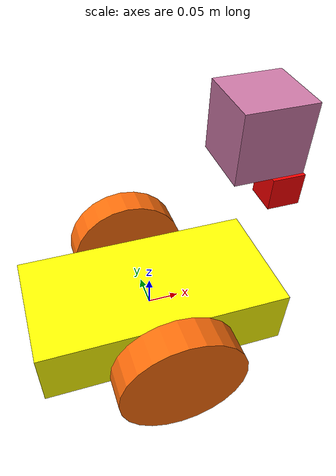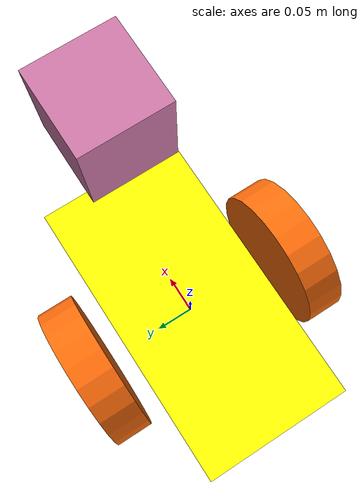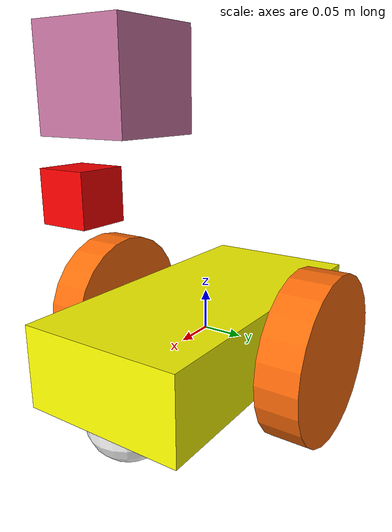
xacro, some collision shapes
<?xml version='1.0'?>

<robot name="slam_bot" xmlns:xacro="http://www.ros.org/wiki/xacro">
  <xacro:include filename="$(find slam_project)/urdf/slam_bot.gazebo" />

  <material name="orange">
    <color rgba="${255/255} ${108/255} ${10/255} 1.0"/>
  </material>
  <material name="white">
    <color rgba="${255/255} ${255/255} ${255/255} 1.0"/>
  </material>
  <material name="red">
    <color rgba="${255/255} ${0/255} ${0/255} 1.0"/>
  </material>
  <material name="yellow">
    <color rgba="${255/255} ${255/255} ${0/255} 1.0"/>
  </material>

  <link name="robot_footprint"></link>

  <joint name="robot_footprint_joint" type="fixed">
    <origin xyz="0 0 0" rpy="0 0 0" />
    <parent link="robot_footprint"/>
    <child link="chassis" />
  </joint>

  <link name='chassis'>
    <pose>0 0 0.1 0 0 0</pose>

    <inertial>
      <mass value="15.0"/>
      <origin xyz="0.0 0 0" rpy=" 0 0 0"/>
      <inertia
          ixx="0.1" ixy="0" ixz="0"
          iyy="0.1" iyz="0"
          izz="0.1"
      />
    </inertial>

    <collision name='collision'>
      <origin xyz="0 0 0" rpy=" 0 0 0"/>
      <geometry>
        <box size=".4 .2 .1"/>
      </geometry>
    </collision>

    <visual name='chassis_visual'>
      <origin xyz="0 0 0" rpy=" 0 0 0"/>
      <geometry>
        <box size=".4 .2 .1"/>
      </geometry>
      <material name="yellow"/>
    </visual>

    <collision name='back_caster_collision'>
      <origin xyz="-0.15 0 -0.05" rpy=" 0 0 0"/>
      <geometry>
        <sphere radius="0.0499"/>
      </geometry>
    </collision>

    <visual name='back_caster_visual'>
      <origin xyz="-0.15 0 -0.05" rpy=" 0 0 0"/>
      <geometry>
        <sphere radius="0.05"/>
      </geometry>
      <material name="white"/>
    </visual>

    <collision name='front_caster_collision'>
      <origin xyz="0.15 0 -0.05" rpy=" 0 0 0"/>
      <geometry>
        <sphere radius="0.0499"/>
      </geometry>
    </collision>

    <visual name='front_caster_visual'>
      <origin xyz="0.15 0 -0.05" rpy=" 0 0 0"/>
      <geometry>
        <sphere radius="0.05"/>
      </geometry>
      <material name="white"/>
    </visual>

  </link>

<link name="left_wheel">

    <inertial>
      <mass value="5.0"/>
      <origin xyz="0 0 0" rpy="0 1.5707 1.5707"/>
      <inertia
          ixx="0.1" ixy="0" ixz="0"
          iyy="0.1" iyz="0"
          izz="0.1"
      />
    </inertial>

    <collision name='left_wheel_collision'>
       <origin xyz="0 0 0" rpy="0 1.5707 1.5707"/>
      <geometry>
       <cylinder radius="0.1" length="0.05"/>
      </geometry>
    </collision>

    <visual name='left_wheel_visual'>
       <origin xyz="0 0 0" rpy="0 1.5707 1.5707"/>
      <geometry>
       <cylinder radius="0.1" length="0.05"/>
      </geometry>
      <material name="orange"/>
    </visual>

  </link>

 <joint type="continuous" name="left_wheel_hinge">
    <origin xyz="0 0.15 0" rpy="0 0 0"/>
    <child link="left_wheel"/>
    <parent link="chassis"/>
    <axis xyz="0 1 0" rpy="0 0 0"/>
    <limit effort="10000" velocity="1000"/>
    <dynamics damping="1.0" friction="1.0"/>
  </joint>

<link name="right_wheel">

    <inertial>
      <mass value="5.0"/>
      <origin xyz="0 0 0" rpy="0 1.5707 1.5707"/>
      <inertia
          ixx="0.1" ixy="0" ixz="0"
          iyy="0.1" iyz="0"
          izz="0.1"
      />
    </inertial>

    <collision name='right_wheel_collision'>
       <origin xyz="0 0 0" rpy="0 1.5707 1.5707"/>
      <geometry>
       <cylinder radius="0.1" length="0.05"/>
      </geometry>
    </collision>

    <visual name='right_wheel_visual'>
       <origin xyz="0 0 0" rpy="0 1.5707 1.5707"/>
      <geometry>
       <cylinder radius="0.1" length="0.05"/>
      </geometry>
      <material name="orange"/>
    </visual>

  </link>

 <joint type="continuous" name="right_wheel_hinge">
    <origin xyz="0 -0.15 0" rpy="0 0 0"/>
    <child link="right_wheel"/>
    <parent link="chassis"/>
    <axis xyz="0 1 0" rpy="0 0 0"/>
    <limit effort="10000" velocity="1000"/>
    <dynamics damping="1.0" friction="1.0"/>
  </joint>

<link name="camera">

    <inertial>
      <mass value="0.1"/>
      <origin xyz="0 0 0" rpy="0 0 0"/>
      <inertia
          ixx="1e-6" ixy="0" ixz="0"
          iyy="1e-6" iyz="0"
          izz="1e-6"
      />
    </inertial>

    <collision name='camera_collision'>
       <origin xyz="0 0 0" rpy="0 0 0"/>
      <geometry>
       <box size=".05 .05 .05"/>
      </geometry>
    </collision>

    <visual name='camera_visual'>
       <origin xyz="0 0 0" rpy="0 0 0"/>
      <geometry>
       <box size=".05 .05 .05"/>
      </geometry>
      <material name="red"/>
    </visual>

  </link>

 <joint name="camera_joint" type="fixed">
    <origin xyz="0.2 0 0.2" rpy="0 0 0"/>
    <child link="camera"/>
    <parent link="chassis"/>
    <axis xyz="0 0 0" rpy="0 0 0"/>
  </joint>

  <link name="camera_rgbd_frame"/>
  <joint name="camera_rgbd_joint" type="fixed">
    <origin xyz="0 0 0" rpy="-${pi/2} 0 -${pi/2}"/>
    <child link="camera_rgbd_frame"/>
    <parent link="camera"/>
    <axis xyz="0 0 0" rpy="0 0 0"/>
  </joint>

<link name="hokuyo">

    <inertial>
      <mass value="0.1"/>
      <origin xyz="0 0 0" rpy="0 0 0"/>
      <inertia
          ixx="1e-6" ixy="0" ixz="0"
          iyy="1e-6" iyz="0"
          izz="1e-6"
      />
    </inertial>

    <collision name='hokuyo_collision'>
       <origin xyz="0 0 0" rpy="0 0 0"/>
      <geometry>
       <box size=".1 .1 .1"/>
      </geometry>
    </collision>

    <visual name='hokuyo_visual'>
       <origin xyz="0 0 0" rpy="0 0 0"/>
      <geometry>
        <!--box size=".1 .1 .1"/-->
        <mesh filename="package://slam_project/meshes/hokuyo.dae" />
      </geometry>
    </visual>

  </link>

 <joint type="fixed" name="hokuyo_joint">
    <origin xyz="0.15 0 0.3" rpy="0 0 0"/>
    <child link="hokuyo"/>
    <parent link="chassis"/>
    <axis xyz="0 0 0" rpy="0 0 0"/>
  </joint>

</robot>
